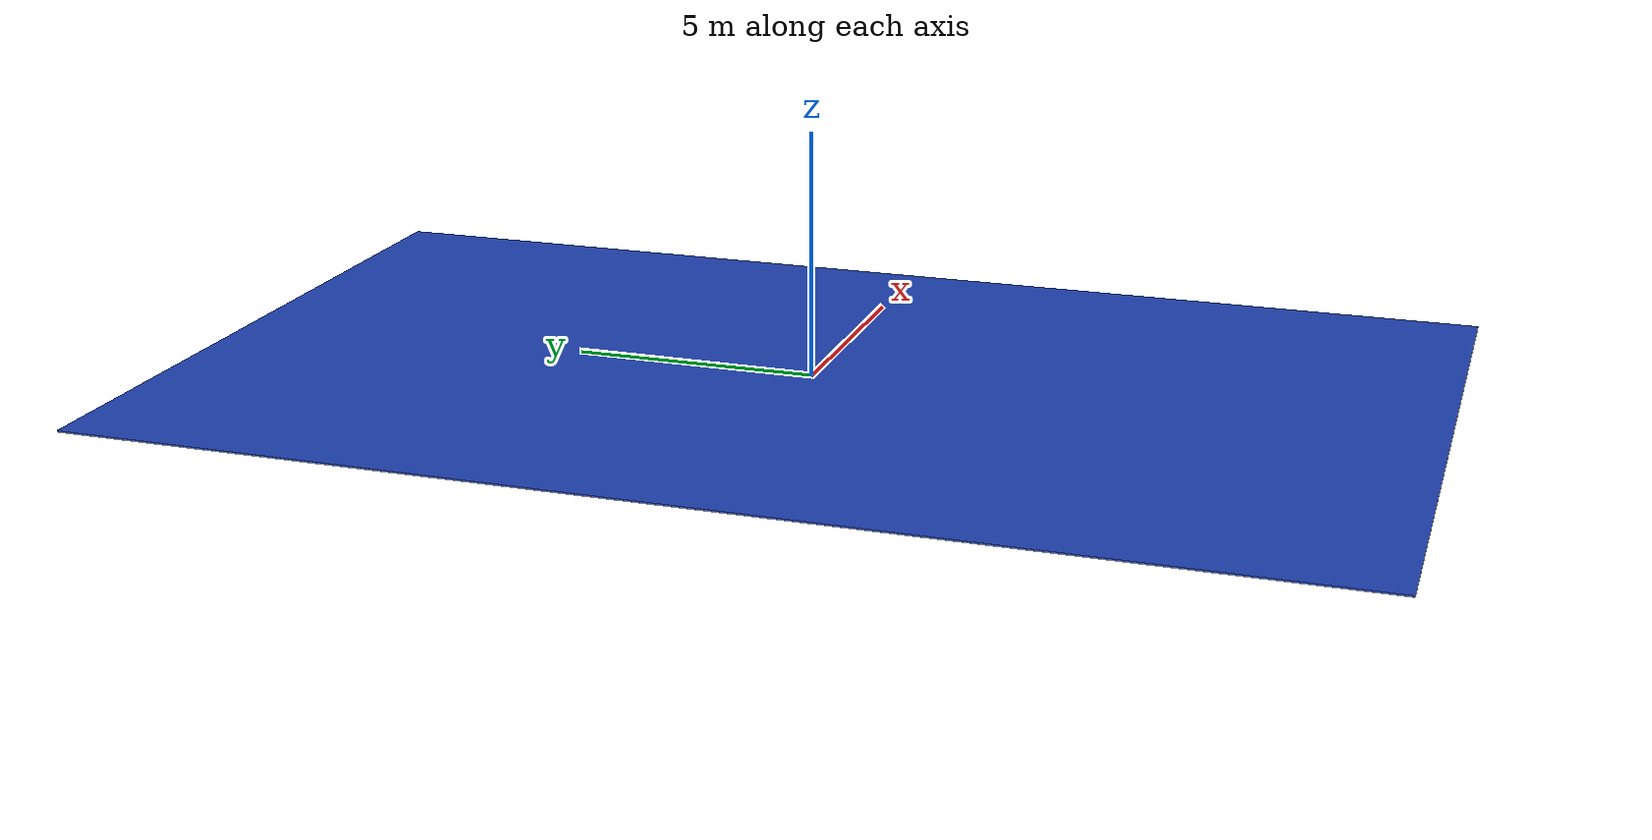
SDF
<?xml version="1.0" ?>
<sdf version="1.5">
  <model name="blue_ground_new">
    <static>true</static>
    <link name="blue_ground_new">
      <collision name="blue_ground_newc">
        <geometry>
          <box>
            <size>15 25 0.03</size>
          </box>
        </geometry>
      </collision>
      <visual name="blue_ground_newv">
        <geometry>
          <box>
            <size>15 25 0.03</size>
          </box>
        </geometry>
        <material>
          <script>
            <uri>model://blue_ground/materials/scripts</uri>
            <uri>model://blue_ground/materials/textures</uri>
            <name>vrc/blue_ground</name>
          </script>
        </material>
      </visual>
    </link>

  </model>
</sdf>
